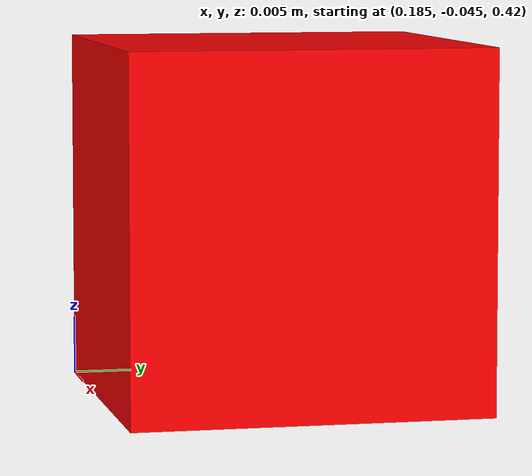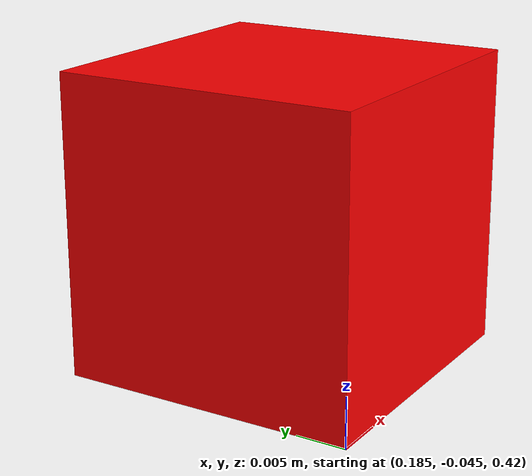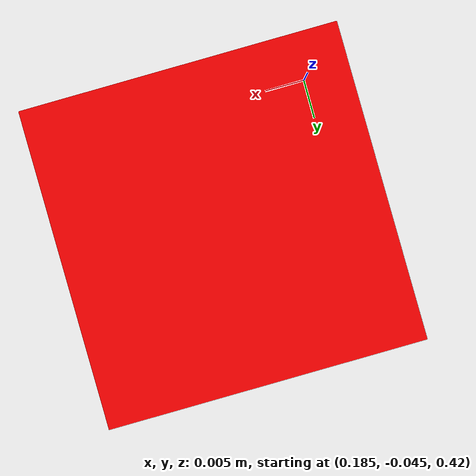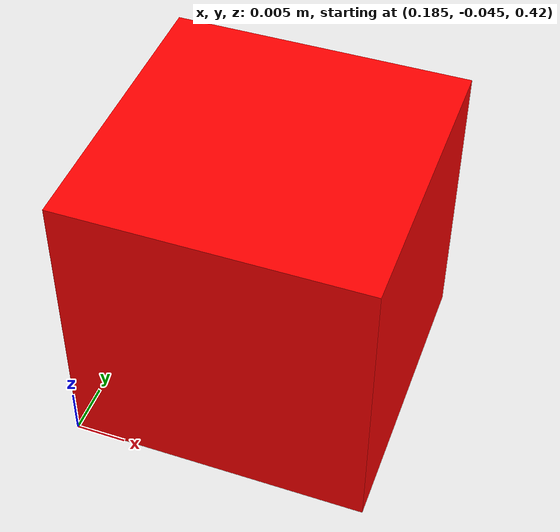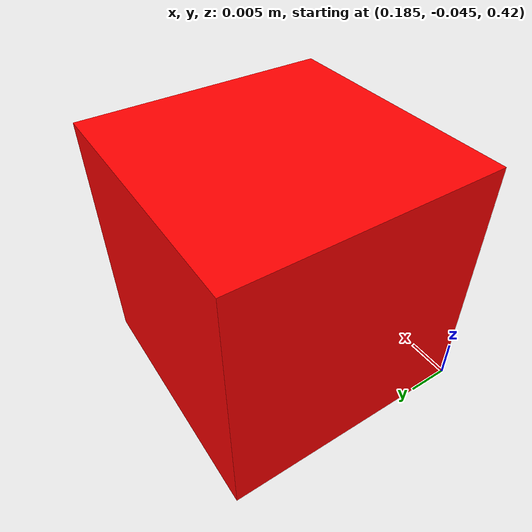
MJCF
<mujoco>
    <worldbody>
        <body name="red_block" pos="0.2 -0.03 0.435">
            <joint name="red_block:joint" type="free" damping="5" frictionloss="1"/>
            <geom name="red_block" size="0.015 0.015 0.015" rgba="1 0 0 1" type="box" conaffinity="0" contype="0" group="1"/>
            <geom name="red_block_collision" size="0.015 0.015 0.015" type="box" conaffinity="1" contype="1" condim="4" group="4" mass="0.01" friction="1 1 1" solref="0.001 1" solimp="1 0.99 0.001"/>
            <site name="red_block" pos="0 0 0" size="0.015 0.015 0.015" rgba="1 0 0 0.5" type="sphere" />
        </body>
    </worldbody>
</mujoco>
